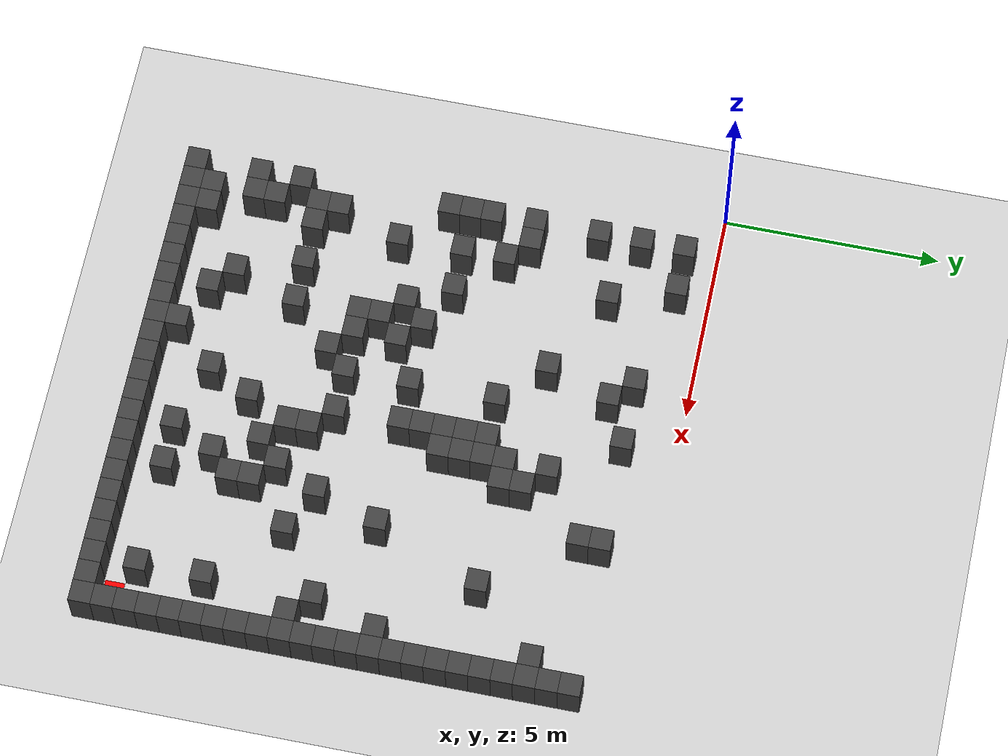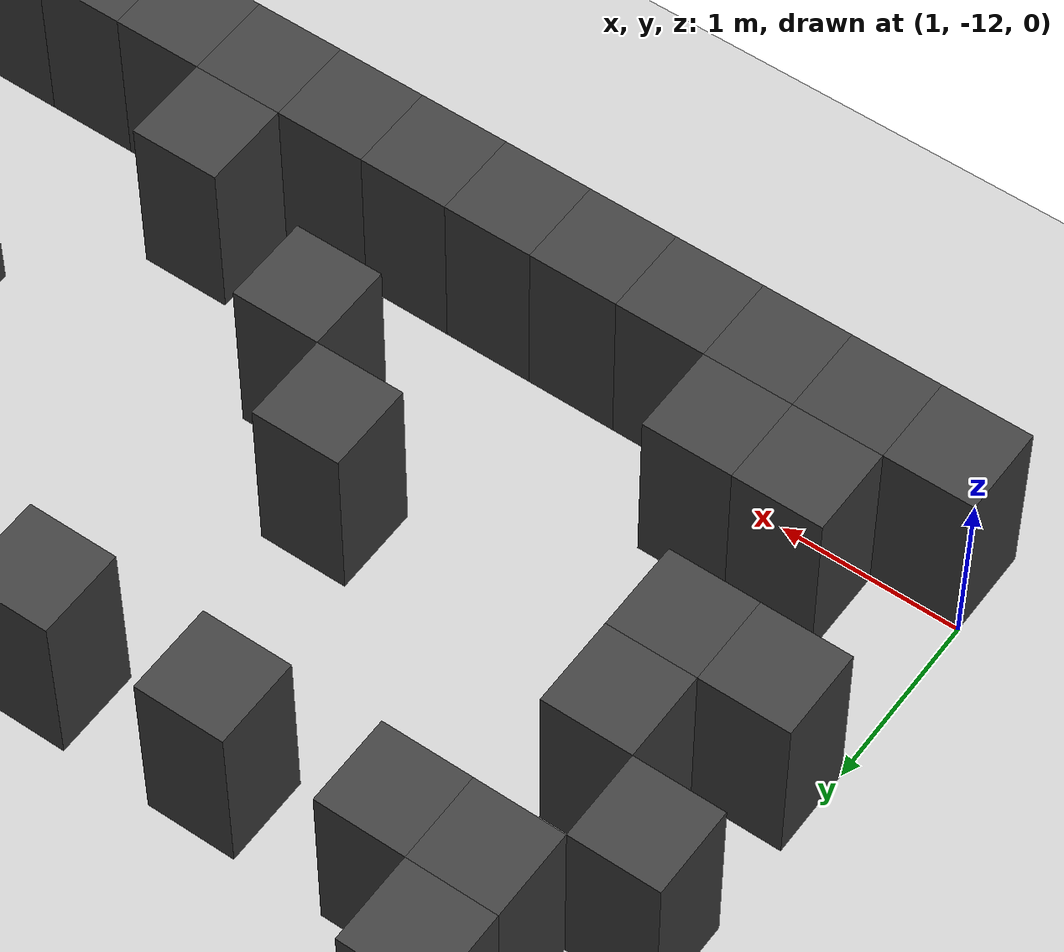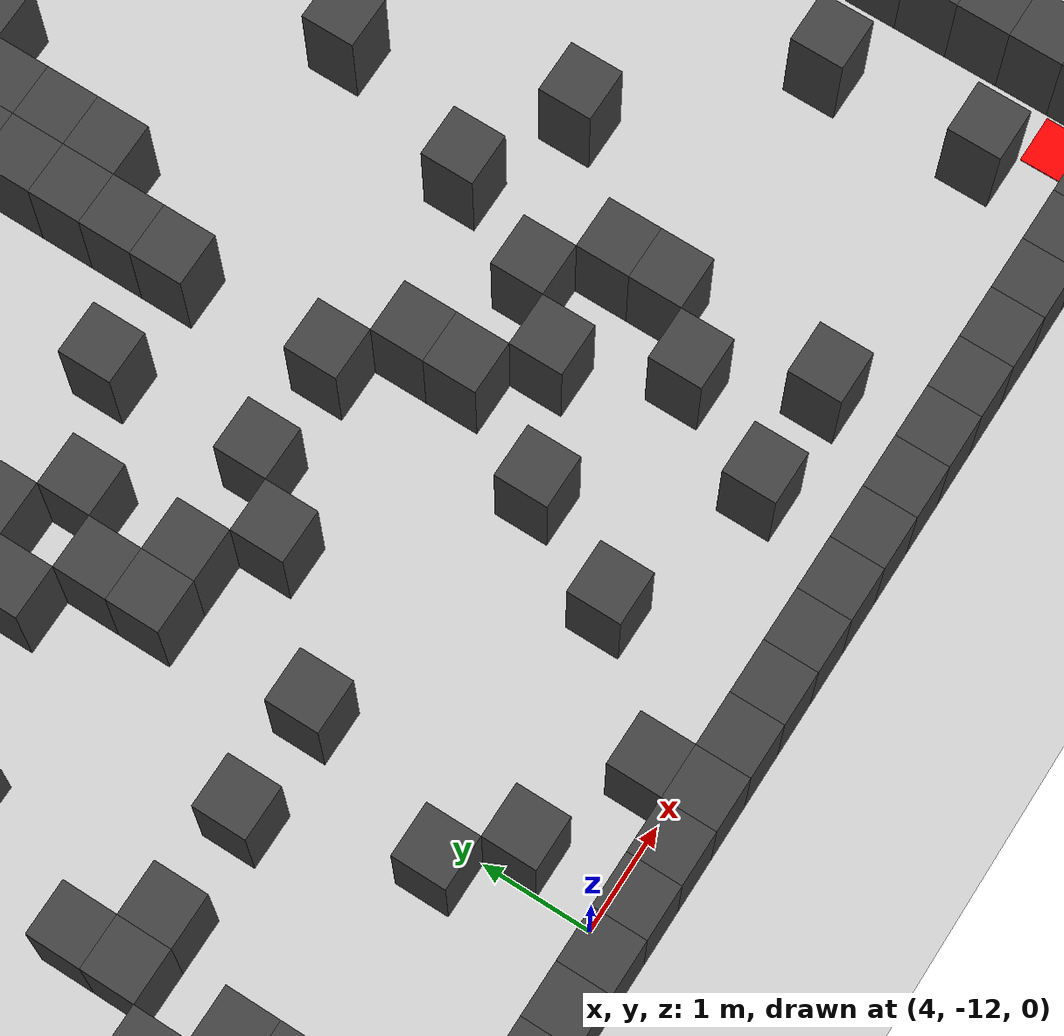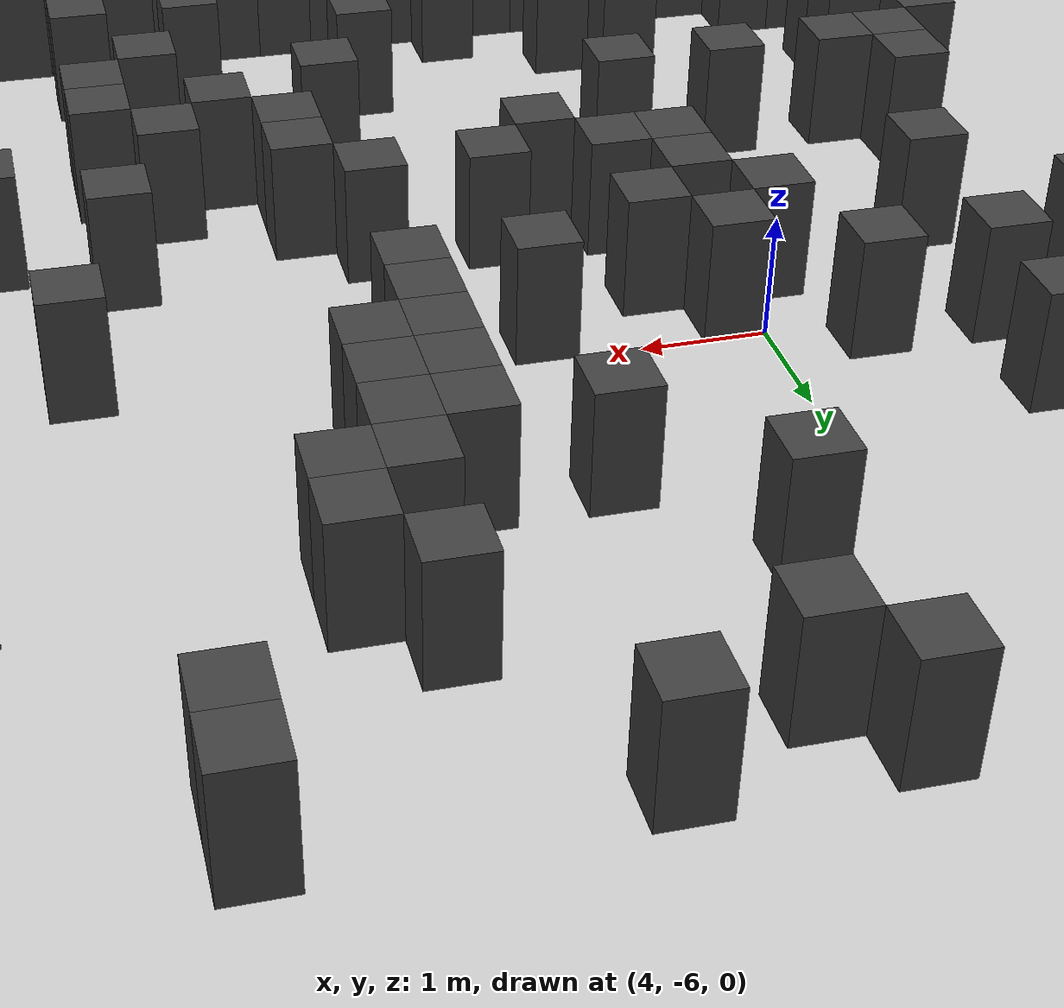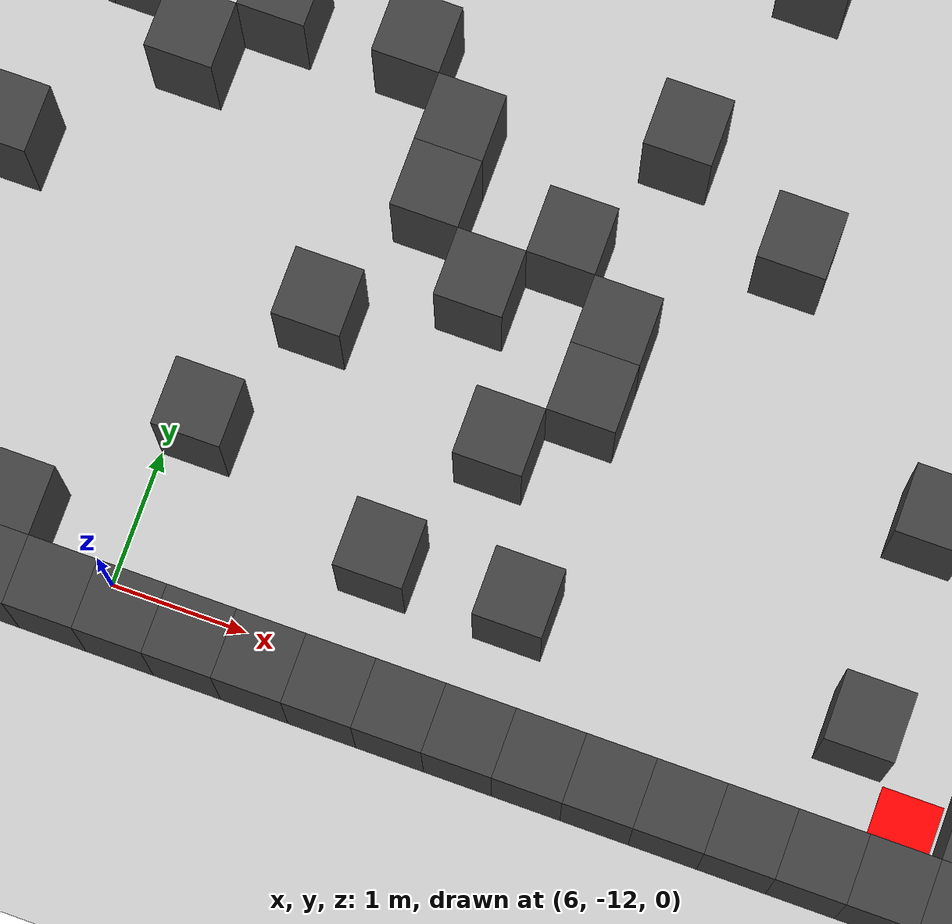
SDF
<sdf version="1.7">
 <world name="map_2522">
  <model name="ground_plane">
   <static>true</static>
   <link name="link">
    <collision name="collision">
     <geometry><plane><normal>0 0 1</normal><size>200 200</size></plane></geometry>
    </collision>
    <visual name="visual">
     <geometry><plane><normal>0 0 1</normal><size>200 200</size></plane></geometry>
     <material><ambient>0.8 0.8 0.8 1</ambient><diffuse>0.8 0.8 0.8 1</diffuse></material>
    </visual>
   </link>
  </model>
  <model name="maze_environment">
   <static>true</static>
   <link name="wall_243">
    <pose>1.250 -0.750 0.500 0 0 0</pose>
    <collision name="col"><geometry><box><size>0.5 0.5 1.0</size></box></geometry></collision>
    <visual name="vis">
     <geometry><box><size>0.5 0.5 1.0</size></box></geometry>
     <material><ambient>0.15 0.15 0.15 1</ambient><diffuse>0.25 0.25 0.25 1</diffuse></material>
    </visual>
   </link>
   <link name="wall_244">
    <pose>2.250 -0.750 0.500 0 0 0</pose>
    <collision name="col"><geometry><box><size>0.5 0.5 1.0</size></box></geometry></collision>
    <visual name="vis">
     <geometry><box><size>0.5 0.5 1.0</size></box></geometry>
     <material><ambient>0.15 0.15 0.15 1</ambient><diffuse>0.25 0.25 0.25 1</diffuse></material>
    </visual>
   </link>
   <link name="wall_252">
    <pose>4.750 -1.250 0.500 0 0 0</pose>
    <collision name="col"><geometry><box><size>0.5 0.5 1.0</size></box></geometry></collision>
    <visual name="vis">
     <geometry><box><size>0.5 0.5 1.0</size></box></geometry>
     <material><ambient>0.15 0.15 0.15 1</ambient><diffuse>0.25 0.25 0.25 1</diffuse></material>
    </visual>
   </link>
   <link name="wall_253">
    <pose>6.250 -1.250 0.500 0 0 0</pose>
    <collision name="col"><geometry><box><size>0.5 0.5 1.0</size></box></geometry></collision>
    <visual name="vis">
     <geometry><box><size>0.5 0.5 1.0</size></box></geometry>
     <material><ambient>0.15 0.15 0.15 1</ambient><diffuse>0.25 0.25 0.25 1</diffuse></material>
    </visual>
   </link>
   <link name="wall_254">
    <pose>8.750 -1.250 0.500 0 0 0</pose>
    <collision name="col"><geometry><box><size>0.5 0.5 1.0</size></box></geometry></collision>
    <visual name="vis">
     <geometry><box><size>0.5 0.5 1.0</size></box></geometry>
     <material><ambient>0.15 0.15 0.15 1</ambient><diffuse>0.25 0.25 0.25 1</diffuse></material>
    </visual>
   </link>
   <link name="wall_255">
    <pose>12.250 -1.250 0.500 0 0 0</pose>
    <collision name="col"><geometry><box><size>0.5 0.5 1.0</size></box></geometry></collision>
    <visual name="vis">
     <geometry><box><size>0.5 0.5 1.0</size></box></geometry>
     <material><ambient>0.15 0.15 0.15 1</ambient><diffuse>0.25 0.25 0.25 1</diffuse></material>
    </visual>
   </link>
   <link name="wall_262">
    <pose>1.250 -1.750 0.500 0 0 0</pose>
    <collision name="col"><geometry><box><size>0.5 0.5 1.0</size></box></geometry></collision>
    <visual name="vis">
     <geometry><box><size>0.5 0.5 1.0</size></box></geometry>
     <material><ambient>0.15 0.15 0.15 1</ambient><diffuse>0.25 0.25 0.25 1</diffuse></material>
    </visual>
   </link>
   <link name="wall_263">
    <pose>5.250 -1.750 0.500 0 0 0</pose>
    <collision name="col"><geometry><box><size>0.5 0.5 1.0</size></box></geometry></collision>
    <visual name="vis">
     <geometry><box><size>0.5 0.5 1.0</size></box></geometry>
     <material><ambient>0.15 0.15 0.15 1</ambient><diffuse>0.25 0.25 0.25 1</diffuse></material>
    </visual>
   </link>
   <link name="wall_264">
    <pose>8.750 -1.750 0.500 0 0 0</pose>
    <collision name="col"><geometry><box><size>0.5 0.5 1.0</size></box></geometry></collision>
    <visual name="vis">
     <geometry><box><size>0.5 0.5 1.0</size></box></geometry>
     <material><ambient>0.15 0.15 0.15 1</ambient><diffuse>0.25 0.25 0.25 1</diffuse></material>
    </visual>
   </link>
   <link name="wall_265">
    <pose>12.250 -1.750 0.500 0 0 0</pose>
    <collision name="col"><geometry><box><size>0.5 0.5 1.0</size></box></geometry></collision>
    <visual name="vis">
     <geometry><box><size>0.5 0.5 1.0</size></box></geometry>
     <material><ambient>0.15 0.15 0.15 1</ambient><diffuse>0.25 0.25 0.25 1</diffuse></material>
    </visual>
   </link>
   <link name="wall_270">
    <pose>2.750 -2.250 0.500 0 0 0</pose>
    <collision name="col"><geometry><box><size>0.5 0.5 1.0</size></box></geometry></collision>
    <visual name="vis">
     <geometry><box><size>0.5 0.5 1.0</size></box></geometry>
     <material><ambient>0.15 0.15 0.15 1</ambient><diffuse>0.25 0.25 0.25 1</diffuse></material>
    </visual>
   </link>
   <link name="wall_271">
    <pose>11.750 -2.250 0.500 0 0 0</pose>
    <collision name="col"><geometry><box><size>0.5 0.5 1.0</size></box></geometry></collision>
    <visual name="vis">
     <geometry><box><size>0.5 0.5 1.0</size></box></geometry>
     <material><ambient>0.15 0.15 0.15 1</ambient><diffuse>0.25 0.25 0.25 1</diffuse></material>
    </visual>
   </link>
   <link name="wall_272">
    <pose>12.250 -2.250 0.500 0 0 0</pose>
    <collision name="col"><geometry><box><size>0.5 0.5 1.0</size></box></geometry></collision>
    <visual name="vis">
     <geometry><box><size>0.5 0.5 1.0</size></box></geometry>
     <material><ambient>0.15 0.15 0.15 1</ambient><diffuse>0.25 0.25 0.25 1</diffuse></material>
    </visual>
   </link>
   <link name="wall_277">
    <pose>1.250 -2.750 0.500 0 0 0</pose>
    <collision name="col"><geometry><box><size>0.5 0.5 1.0</size></box></geometry></collision>
    <visual name="vis">
     <geometry><box><size>0.5 0.5 1.0</size></box></geometry>
     <material><ambient>0.15 0.15 0.15 1</ambient><diffuse>0.25 0.25 0.25 1</diffuse></material>
    </visual>
   </link>
   <link name="wall_278">
    <pose>7.250 -2.750 0.500 0 0 0</pose>
    <collision name="col"><geometry><box><size>0.5 0.5 1.0</size></box></geometry></collision>
    <visual name="vis">
     <geometry><box><size>0.5 0.5 1.0</size></box></geometry>
     <material><ambient>0.15 0.15 0.15 1</ambient><diffuse>0.25 0.25 0.25 1</diffuse></material>
    </visual>
   </link>
   <link name="wall_279">
    <pose>12.250 -2.750 0.500 0 0 0</pose>
    <collision name="col"><geometry><box><size>0.5 0.5 1.0</size></box></geometry></collision>
    <visual name="vis">
     <geometry><box><size>0.5 0.5 1.0</size></box></geometry>
     <material><ambient>0.15 0.15 0.15 1</ambient><diffuse>0.25 0.25 0.25 1</diffuse></material>
    </visual>
   </link>
   <link name="wall_284">
    <pose>4.750 -3.250 0.500 0 0 0</pose>
    <collision name="col"><geometry><box><size>0.5 0.5 1.0</size></box></geometry></collision>
    <visual name="vis">
     <geometry><box><size>0.5 0.5 1.0</size></box></geometry>
     <material><ambient>0.15 0.15 0.15 1</ambient><diffuse>0.25 0.25 0.25 1</diffuse></material>
    </visual>
   </link>
   <link name="wall_285">
    <pose>7.750 -3.250 0.500 0 0 0</pose>
    <collision name="col"><geometry><box><size>0.5 0.5 1.0</size></box></geometry></collision>
    <visual name="vis">
     <geometry><box><size>0.5 0.5 1.0</size></box></geometry>
     <material><ambient>0.15 0.15 0.15 1</ambient><diffuse>0.25 0.25 0.25 1</diffuse></material>
    </visual>
   </link>
   <link name="wall_286">
    <pose>12.250 -3.250 0.500 0 0 0</pose>
    <collision name="col"><geometry><box><size>0.5 0.5 1.0</size></box></geometry></collision>
    <visual name="vis">
     <geometry><box><size>0.5 0.5 1.0</size></box></geometry>
     <material><ambient>0.15 0.15 0.15 1</ambient><diffuse>0.25 0.25 0.25 1</diffuse></material>
    </visual>
   </link>
   <link name="wall_292">
    <pose>7.250 -3.750 0.500 0 0 0</pose>
    <collision name="col"><geometry><box><size>0.5 0.5 1.0</size></box></geometry></collision>
    <visual name="vis">
     <geometry><box><size>0.5 0.5 1.0</size></box></geometry>
     <material><ambient>0.15 0.15 0.15 1</ambient><diffuse>0.25 0.25 0.25 1</diffuse></material>
    </visual>
   </link>
   <link name="wall_293">
    <pose>7.750 -3.750 0.500 0 0 0</pose>
    <collision name="col"><geometry><box><size>0.5 0.5 1.0</size></box></geometry></collision>
    <visual name="vis">
     <geometry><box><size>0.5 0.5 1.0</size></box></geometry>
     <material><ambient>0.15 0.15 0.15 1</ambient><diffuse>0.25 0.25 0.25 1</diffuse></material>
    </visual>
   </link>
   <link name="wall_294">
    <pose>10.250 -3.750 0.500 0 0 0</pose>
    <collision name="col"><geometry><box><size>0.5 0.5 1.0</size></box></geometry></collision>
    <visual name="vis">
     <geometry><box><size>0.5 0.5 1.0</size></box></geometry>
     <material><ambient>0.15 0.15 0.15 1</ambient><diffuse>0.25 0.25 0.25 1</diffuse></material>
    </visual>
   </link>
   <link name="wall_295">
    <pose>12.250 -3.750 0.500 0 0 0</pose>
    <collision name="col"><geometry><box><size>0.5 0.5 1.0</size></box></geometry></collision>
    <visual name="vis">
     <geometry><box><size>0.5 0.5 1.0</size></box></geometry>
     <material><ambient>0.15 0.15 0.15 1</ambient><diffuse>0.25 0.25 0.25 1</diffuse></material>
    </visual>
   </link>
   <link name="wall_299">
    <pose>1.250 -4.250 0.500 0 0 0</pose>
    <collision name="col"><geometry><box><size>0.5 0.5 1.0</size></box></geometry></collision>
    <visual name="vis">
     <geometry><box><size>0.5 0.5 1.0</size></box></geometry>
     <material><ambient>0.15 0.15 0.15 1</ambient><diffuse>0.25 0.25 0.25 1</diffuse></material>
    </visual>
   </link>
   <link name="wall_300">
    <pose>1.750 -4.250 0.500 0 0 0</pose>
    <collision name="col"><geometry><box><size>0.5 0.5 1.0</size></box></geometry></collision>
    <visual name="vis">
     <geometry><box><size>0.5 0.5 1.0</size></box></geometry>
     <material><ambient>0.15 0.15 0.15 1</ambient><diffuse>0.25 0.25 0.25 1</diffuse></material>
    </visual>
   </link>
   <link name="wall_301">
    <pose>5.750 -4.250 0.500 0 0 0</pose>
    <collision name="col"><geometry><box><size>0.5 0.5 1.0</size></box></geometry></collision>
    <visual name="vis">
     <geometry><box><size>0.5 0.5 1.0</size></box></geometry>
     <material><ambient>0.15 0.15 0.15 1</ambient><diffuse>0.25 0.25 0.25 1</diffuse></material>
    </visual>
   </link>
   <link name="wall_302">
    <pose>6.750 -4.250 0.500 0 0 0</pose>
    <collision name="col"><geometry><box><size>0.5 0.5 1.0</size></box></geometry></collision>
    <visual name="vis">
     <geometry><box><size>0.5 0.5 1.0</size></box></geometry>
     <material><ambient>0.15 0.15 0.15 1</ambient><diffuse>0.25 0.25 0.25 1</diffuse></material>
    </visual>
   </link>
   <link name="wall_303">
    <pose>7.250 -4.250 0.500 0 0 0</pose>
    <collision name="col"><geometry><box><size>0.5 0.5 1.0</size></box></geometry></collision>
    <visual name="vis">
     <geometry><box><size>0.5 0.5 1.0</size></box></geometry>
     <material><ambient>0.15 0.15 0.15 1</ambient><diffuse>0.25 0.25 0.25 1</diffuse></material>
    </visual>
   </link>
   <link name="wall_304">
    <pose>12.250 -4.250 0.500 0 0 0</pose>
    <collision name="col"><geometry><box><size>0.5 0.5 1.0</size></box></geometry></collision>
    <visual name="vis">
     <geometry><box><size>0.5 0.5 1.0</size></box></geometry>
     <material><ambient>0.15 0.15 0.15 1</ambient><diffuse>0.25 0.25 0.25 1</diffuse></material>
    </visual>
   </link>
   <link name="wall_315">
    <pose>2.250 -4.750 0.500 0 0 0</pose>
    <collision name="col"><geometry><box><size>0.5 0.5 1.0</size></box></geometry></collision>
    <visual name="vis">
     <geometry><box><size>0.5 0.5 1.0</size></box></geometry>
     <material><ambient>0.15 0.15 0.15 1</ambient><diffuse>0.25 0.25 0.25 1</diffuse></material>
    </visual>
   </link>
   <link name="wall_316">
    <pose>6.750 -4.750 0.500 0 0 0</pose>
    <collision name="col"><geometry><box><size>0.5 0.5 1.0</size></box></geometry></collision>
    <visual name="vis">
     <geometry><box><size>0.5 0.5 1.0</size></box></geometry>
     <material><ambient>0.15 0.15 0.15 1</ambient><diffuse>0.25 0.25 0.25 1</diffuse></material>
    </visual>
   </link>
   <link name="wall_317">
    <pose>7.250 -4.750 0.500 0 0 0</pose>
    <collision name="col"><geometry><box><size>0.5 0.5 1.0</size></box></geometry></collision>
    <visual name="vis">
     <geometry><box><size>0.5 0.5 1.0</size></box></geometry>
     <material><ambient>0.15 0.15 0.15 1</ambient><diffuse>0.25 0.25 0.25 1</diffuse></material>
    </visual>
   </link>
   <link name="wall_318">
    <pose>12.250 -4.750 0.500 0 0 0</pose>
    <collision name="col"><geometry><box><size>0.5 0.5 1.0</size></box></geometry></collision>
    <visual name="vis">
     <geometry><box><size>0.5 0.5 1.0</size></box></geometry>
     <material><ambient>0.15 0.15 0.15 1</ambient><diffuse>0.25 0.25 0.25 1</diffuse></material>
    </visual>
   </link>
   <link name="wall_322">
    <pose>1.250 -5.250 0.500 0 0 0</pose>
    <collision name="col"><geometry><box><size>0.5 0.5 1.0</size></box></geometry></collision>
    <visual name="vis">
     <geometry><box><size>0.5 0.5 1.0</size></box></geometry>
     <material><ambient>0.15 0.15 0.15 1</ambient><diffuse>0.25 0.25 0.25 1</diffuse></material>
    </visual>
   </link>
   <link name="wall_323">
    <pose>6.750 -5.250 0.500 0 0 0</pose>
    <collision name="col"><geometry><box><size>0.5 0.5 1.0</size></box></geometry></collision>
    <visual name="vis">
     <geometry><box><size>0.5 0.5 1.0</size></box></geometry>
     <material><ambient>0.15 0.15 0.15 1</ambient><diffuse>0.25 0.25 0.25 1</diffuse></material>
    </visual>
   </link>
   <link name="wall_324">
    <pose>7.250 -5.250 0.500 0 0 0</pose>
    <collision name="col"><geometry><box><size>0.5 0.5 1.0</size></box></geometry></collision>
    <visual name="vis">
     <geometry><box><size>0.5 0.5 1.0</size></box></geometry>
     <material><ambient>0.15 0.15 0.15 1</ambient><diffuse>0.25 0.25 0.25 1</diffuse></material>
    </visual>
   </link>
   <link name="wall_325">
    <pose>12.250 -5.250 0.500 0 0 0</pose>
    <collision name="col"><geometry><box><size>0.5 0.5 1.0</size></box></geometry></collision>
    <visual name="vis">
     <geometry><box><size>0.5 0.5 1.0</size></box></geometry>
     <material><ambient>0.15 0.15 0.15 1</ambient><diffuse>0.25 0.25 0.25 1</diffuse></material>
    </visual>
   </link>
   <link name="wall_329">
    <pose>1.250 -5.750 0.500 0 0 0</pose>
    <collision name="col"><geometry><box><size>0.5 0.5 1.0</size></box></geometry></collision>
    <visual name="vis">
     <geometry><box><size>0.5 0.5 1.0</size></box></geometry>
     <material><ambient>0.15 0.15 0.15 1</ambient><diffuse>0.25 0.25 0.25 1</diffuse></material>
    </visual>
   </link>
   <link name="wall_330">
    <pose>2.250 -5.750 0.500 0 0 0</pose>
    <collision name="col"><geometry><box><size>0.5 0.5 1.0</size></box></geometry></collision>
    <visual name="vis">
     <geometry><box><size>0.5 0.5 1.0</size></box></geometry>
     <material><ambient>0.15 0.15 0.15 1</ambient><diffuse>0.25 0.25 0.25 1</diffuse></material>
    </visual>
   </link>
   <link name="wall_331">
    <pose>3.250 -5.750 0.500 0 0 0</pose>
    <collision name="col"><geometry><box><size>0.5 0.5 1.0</size></box></geometry></collision>
    <visual name="vis">
     <geometry><box><size>0.5 0.5 1.0</size></box></geometry>
     <material><ambient>0.15 0.15 0.15 1</ambient><diffuse>0.25 0.25 0.25 1</diffuse></material>
    </visual>
   </link>
   <link name="wall_332">
    <pose>6.750 -5.750 0.500 0 0 0</pose>
    <collision name="col"><geometry><box><size>0.5 0.5 1.0</size></box></geometry></collision>
    <visual name="vis">
     <geometry><box><size>0.5 0.5 1.0</size></box></geometry>
     <material><ambient>0.15 0.15 0.15 1</ambient><diffuse>0.25 0.25 0.25 1</diffuse></material>
    </visual>
   </link>
   <link name="wall_333">
    <pose>11.750 -5.750 0.500 0 0 0</pose>
    <collision name="col"><geometry><box><size>0.5 0.5 1.0</size></box></geometry></collision>
    <visual name="vis">
     <geometry><box><size>0.5 0.5 1.0</size></box></geometry>
     <material><ambient>0.15 0.15 0.15 1</ambient><diffuse>0.25 0.25 0.25 1</diffuse></material>
    </visual>
   </link>
   <link name="wall_334">
    <pose>12.250 -5.750 0.500 0 0 0</pose>
    <collision name="col"><geometry><box><size>0.5 0.5 1.0</size></box></geometry></collision>
    <visual name="vis">
     <geometry><box><size>0.5 0.5 1.0</size></box></geometry>
     <material><ambient>0.15 0.15 0.15 1</ambient><diffuse>0.25 0.25 0.25 1</diffuse></material>
    </visual>
   </link>
   <link name="wall_340">
    <pose>1.250 -6.250 0.500 0 0 0</pose>
    <collision name="col"><geometry><box><size>0.5 0.5 1.0</size></box></geometry></collision>
    <visual name="vis">
     <geometry><box><size>0.5 0.5 1.0</size></box></geometry>
     <material><ambient>0.15 0.15 0.15 1</ambient><diffuse>0.25 0.25 0.25 1</diffuse></material>
    </visual>
   </link>
   <link name="wall_341">
    <pose>4.250 -6.250 0.500 0 0 0</pose>
    <collision name="col"><geometry><box><size>0.5 0.5 1.0</size></box></geometry></collision>
    <visual name="vis">
     <geometry><box><size>0.5 0.5 1.0</size></box></geometry>
     <material><ambient>0.15 0.15 0.15 1</ambient><diffuse>0.25 0.25 0.25 1</diffuse></material>
    </visual>
   </link>
   <link name="wall_342">
    <pose>5.750 -6.250 0.500 0 0 0</pose>
    <collision name="col"><geometry><box><size>0.5 0.5 1.0</size></box></geometry></collision>
    <visual name="vis">
     <geometry><box><size>0.5 0.5 1.0</size></box></geometry>
     <material><ambient>0.15 0.15 0.15 1</ambient><diffuse>0.25 0.25 0.25 1</diffuse></material>
    </visual>
   </link>
   <link name="wall_343">
    <pose>6.750 -6.250 0.500 0 0 0</pose>
    <collision name="col"><geometry><box><size>0.5 0.5 1.0</size></box></geometry></collision>
    <visual name="vis">
     <geometry><box><size>0.5 0.5 1.0</size></box></geometry>
     <material><ambient>0.15 0.15 0.15 1</ambient><diffuse>0.25 0.25 0.25 1</diffuse></material>
    </visual>
   </link>
   <link name="wall_344">
    <pose>9.250 -6.250 0.500 0 0 0</pose>
    <collision name="col"><geometry><box><size>0.5 0.5 1.0</size></box></geometry></collision>
    <visual name="vis">
     <geometry><box><size>0.5 0.5 1.0</size></box></geometry>
     <material><ambient>0.15 0.15 0.15 1</ambient><diffuse>0.25 0.25 0.25 1</diffuse></material>
    </visual>
   </link>
   <link name="wall_345">
    <pose>12.250 -6.250 0.500 0 0 0</pose>
    <collision name="col"><geometry><box><size>0.5 0.5 1.0</size></box></geometry></collision>
    <visual name="vis">
     <geometry><box><size>0.5 0.5 1.0</size></box></geometry>
     <material><ambient>0.15 0.15 0.15 1</ambient><diffuse>0.25 0.25 0.25 1</diffuse></material>
    </visual>
   </link>
   <link name="wall_351">
    <pose>3.750 -6.750 0.500 0 0 0</pose>
    <collision name="col"><geometry><box><size>0.5 0.5 1.0</size></box></geometry></collision>
    <visual name="vis">
     <geometry><box><size>0.5 0.5 1.0</size></box></geometry>
     <material><ambient>0.15 0.15 0.15 1</ambient><diffuse>0.25 0.25 0.25 1</diffuse></material>
    </visual>
   </link>
   <link name="wall_352">
    <pose>4.750 -6.750 0.500 0 0 0</pose>
    <collision name="col"><geometry><box><size>0.5 0.5 1.0</size></box></geometry></collision>
    <visual name="vis">
     <geometry><box><size>0.5 0.5 1.0</size></box></geometry>
     <material><ambient>0.15 0.15 0.15 1</ambient><diffuse>0.25 0.25 0.25 1</diffuse></material>
    </visual>
   </link>
   <link name="wall_353">
    <pose>12.250 -6.750 0.500 0 0 0</pose>
    <collision name="col"><geometry><box><size>0.5 0.5 1.0</size></box></geometry></collision>
    <visual name="vis">
     <geometry><box><size>0.5 0.5 1.0</size></box></geometry>
     <material><ambient>0.15 0.15 0.15 1</ambient><diffuse>0.25 0.25 0.25 1</diffuse></material>
    </visual>
   </link>
   <link name="wall_359">
    <pose>2.250 -7.250 0.500 0 0 0</pose>
    <collision name="col"><geometry><box><size>0.5 0.5 1.0</size></box></geometry></collision>
    <visual name="vis">
     <geometry><box><size>0.5 0.5 1.0</size></box></geometry>
     <material><ambient>0.15 0.15 0.15 1</ambient><diffuse>0.25 0.25 0.25 1</diffuse></material>
    </visual>
   </link>
   <link name="wall_360">
    <pose>4.250 -7.250 0.500 0 0 0</pose>
    <collision name="col"><geometry><box><size>0.5 0.5 1.0</size></box></geometry></collision>
    <visual name="vis">
     <geometry><box><size>0.5 0.5 1.0</size></box></geometry>
     <material><ambient>0.15 0.15 0.15 1</ambient><diffuse>0.25 0.25 0.25 1</diffuse></material>
    </visual>
   </link>
   <link name="wall_361">
    <pose>11.250 -7.250 0.500 0 0 0</pose>
    <collision name="col"><geometry><box><size>0.5 0.5 1.0</size></box></geometry></collision>
    <visual name="vis">
     <geometry><box><size>0.5 0.5 1.0</size></box></geometry>
     <material><ambient>0.15 0.15 0.15 1</ambient><diffuse>0.25 0.25 0.25 1</diffuse></material>
    </visual>
   </link>
   <link name="wall_362">
    <pose>12.250 -7.250 0.500 0 0 0</pose>
    <collision name="col"><geometry><box><size>0.5 0.5 1.0</size></box></geometry></collision>
    <visual name="vis">
     <geometry><box><size>0.5 0.5 1.0</size></box></geometry>
     <material><ambient>0.15 0.15 0.15 1</ambient><diffuse>0.25 0.25 0.25 1</diffuse></material>
    </visual>
   </link>
   <link name="wall_365">
    <pose>4.250 -7.750 0.500 0 0 0</pose>
    <collision name="col"><geometry><box><size>0.5 0.5 1.0</size></box></geometry></collision>
    <visual name="vis">
     <geometry><box><size>0.5 0.5 1.0</size></box></geometry>
     <material><ambient>0.15 0.15 0.15 1</ambient><diffuse>0.25 0.25 0.25 1</diffuse></material>
    </visual>
   </link>
   <link name="wall_366">
    <pose>4.750 -7.750 0.500 0 0 0</pose>
    <collision name="col"><geometry><box><size>0.5 0.5 1.0</size></box></geometry></collision>
    <visual name="vis">
     <geometry><box><size>0.5 0.5 1.0</size></box></geometry>
     <material><ambient>0.15 0.15 0.15 1</ambient><diffuse>0.25 0.25 0.25 1</diffuse></material>
    </visual>
   </link>
   <link name="wall_367">
    <pose>5.750 -7.750 0.500 0 0 0</pose>
    <collision name="col"><geometry><box><size>0.5 0.5 1.0</size></box></geometry></collision>
    <visual name="vis">
     <geometry><box><size>0.5 0.5 1.0</size></box></geometry>
     <material><ambient>0.15 0.15 0.15 1</ambient><diffuse>0.25 0.25 0.25 1</diffuse></material>
    </visual>
   </link>
   <link name="wall_368">
    <pose>6.750 -7.750 0.500 0 0 0</pose>
    <collision name="col"><geometry><box><size>0.5 0.5 1.0</size></box></geometry></collision>
    <visual name="vis">
     <geometry><box><size>0.5 0.5 1.0</size></box></geometry>
     <material><ambient>0.15 0.15 0.15 1</ambient><diffuse>0.25 0.25 0.25 1</diffuse></material>
    </visual>
   </link>
   <link name="wall_369">
    <pose>8.750 -7.750 0.500 0 0 0</pose>
    <collision name="col"><geometry><box><size>0.5 0.5 1.0</size></box></geometry></collision>
    <visual name="vis">
     <geometry><box><size>0.5 0.5 1.0</size></box></geometry>
     <material><ambient>0.15 0.15 0.15 1</ambient><diffuse>0.25 0.25 0.25 1</diffuse></material>
    </visual>
   </link>
   <link name="wall_370">
    <pose>11.750 -7.750 0.500 0 0 0</pose>
    <collision name="col"><geometry><box><size>0.5 0.5 1.0</size></box></geometry></collision>
    <visual name="vis">
     <geometry><box><size>0.5 0.5 1.0</size></box></geometry>
     <material><ambient>0.15 0.15 0.15 1</ambient><diffuse>0.25 0.25 0.25 1</diffuse></material>
    </visual>
   </link>
   <link name="wall_371">
    <pose>12.250 -7.750 0.500 0 0 0</pose>
    <collision name="col"><geometry><box><size>0.5 0.5 1.0</size></box></geometry></collision>
    <visual name="vis">
     <geometry><box><size>0.5 0.5 1.0</size></box></geometry>
     <material><ambient>0.15 0.15 0.15 1</ambient><diffuse>0.25 0.25 0.25 1</diffuse></material>
    </visual>
   </link>
   <link name="wall_377">
    <pose>5.250 -8.250 0.500 0 0 0</pose>
    <collision name="col"><geometry><box><size>0.5 0.5 1.0</size></box></geometry></collision>
    <visual name="vis">
     <geometry><box><size>0.5 0.5 1.0</size></box></geometry>
     <material><ambient>0.15 0.15 0.15 1</ambient><diffuse>0.25 0.25 0.25 1</diffuse></material>
    </visual>
   </link>
   <link name="wall_378">
    <pose>7.250 -8.250 0.500 0 0 0</pose>
    <collision name="col"><geometry><box><size>0.5 0.5 1.0</size></box></geometry></collision>
    <visual name="vis">
     <geometry><box><size>0.5 0.5 1.0</size></box></geometry>
     <material><ambient>0.15 0.15 0.15 1</ambient><diffuse>0.25 0.25 0.25 1</diffuse></material>
    </visual>
   </link>
   <link name="wall_379">
    <pose>9.750 -8.250 0.500 0 0 0</pose>
    <collision name="col"><geometry><box><size>0.5 0.5 1.0</size></box></geometry></collision>
    <visual name="vis">
     <geometry><box><size>0.5 0.5 1.0</size></box></geometry>
     <material><ambient>0.15 0.15 0.15 1</ambient><diffuse>0.25 0.25 0.25 1</diffuse></material>
    </visual>
   </link>
   <link name="wall_380">
    <pose>12.250 -8.250 0.500 0 0 0</pose>
    <collision name="col"><geometry><box><size>0.5 0.5 1.0</size></box></geometry></collision>
    <visual name="vis">
     <geometry><box><size>0.5 0.5 1.0</size></box></geometry>
     <material><ambient>0.15 0.15 0.15 1</ambient><diffuse>0.25 0.25 0.25 1</diffuse></material>
    </visual>
   </link>
   <link name="wall_383">
    <pose>1.750 -8.750 0.500 0 0 0</pose>
    <collision name="col"><geometry><box><size>0.5 0.5 1.0</size></box></geometry></collision>
    <visual name="vis">
     <geometry><box><size>0.5 0.5 1.0</size></box></geometry>
     <material><ambient>0.15 0.15 0.15 1</ambient><diffuse>0.25 0.25 0.25 1</diffuse></material>
    </visual>
   </link>
   <link name="wall_384">
    <pose>7.250 -8.750 0.500 0 0 0</pose>
    <collision name="col"><geometry><box><size>0.5 0.5 1.0</size></box></geometry></collision>
    <visual name="vis">
     <geometry><box><size>0.5 0.5 1.0</size></box></geometry>
     <material><ambient>0.15 0.15 0.15 1</ambient><diffuse>0.25 0.25 0.25 1</diffuse></material>
    </visual>
   </link>
   <link name="wall_385">
    <pose>8.250 -8.750 0.500 0 0 0</pose>
    <collision name="col"><geometry><box><size>0.5 0.5 1.0</size></box></geometry></collision>
    <visual name="vis">
     <geometry><box><size>0.5 0.5 1.0</size></box></geometry>
     <material><ambient>0.15 0.15 0.15 1</ambient><diffuse>0.25 0.25 0.25 1</diffuse></material>
    </visual>
   </link>
   <link name="wall_386">
    <pose>12.250 -8.750 0.500 0 0 0</pose>
    <collision name="col"><geometry><box><size>0.5 0.5 1.0</size></box></geometry></collision>
    <visual name="vis">
     <geometry><box><size>0.5 0.5 1.0</size></box></geometry>
     <material><ambient>0.15 0.15 0.15 1</ambient><diffuse>0.25 0.25 0.25 1</diffuse></material>
    </visual>
   </link>
   <link name="wall_392">
    <pose>1.750 -9.250 0.500 0 0 0</pose>
    <collision name="col"><geometry><box><size>0.5 0.5 1.0</size></box></geometry></collision>
    <visual name="vis">
     <geometry><box><size>0.5 0.5 1.0</size></box></geometry>
     <material><ambient>0.15 0.15 0.15 1</ambient><diffuse>0.25 0.25 0.25 1</diffuse></material>
    </visual>
   </link>
   <link name="wall_393">
    <pose>2.250 -9.250 0.500 0 0 0</pose>
    <collision name="col"><geometry><box><size>0.5 0.5 1.0</size></box></geometry></collision>
    <visual name="vis">
     <geometry><box><size>0.5 0.5 1.0</size></box></geometry>
     <material><ambient>0.15 0.15 0.15 1</ambient><diffuse>0.25 0.25 0.25 1</diffuse></material>
    </visual>
   </link>
   <link name="wall_394">
    <pose>3.250 -9.250 0.500 0 0 0</pose>
    <collision name="col"><geometry><box><size>0.5 0.5 1.0</size></box></geometry></collision>
    <visual name="vis">
     <geometry><box><size>0.5 0.5 1.0</size></box></geometry>
     <material><ambient>0.15 0.15 0.15 1</ambient><diffuse>0.25 0.25 0.25 1</diffuse></material>
    </visual>
   </link>
   <link name="wall_395">
    <pose>4.250 -9.250 0.500 0 0 0</pose>
    <collision name="col"><geometry><box><size>0.5 0.5 1.0</size></box></geometry></collision>
    <visual name="vis">
     <geometry><box><size>0.5 0.5 1.0</size></box></geometry>
     <material><ambient>0.15 0.15 0.15 1</ambient><diffuse>0.25 0.25 0.25 1</diffuse></material>
    </visual>
   </link>
   <link name="wall_396">
    <pose>7.750 -9.250 0.500 0 0 0</pose>
    <collision name="col"><geometry><box><size>0.5 0.5 1.0</size></box></geometry></collision>
    <visual name="vis">
     <geometry><box><size>0.5 0.5 1.0</size></box></geometry>
     <material><ambient>0.15 0.15 0.15 1</ambient><diffuse>0.25 0.25 0.25 1</diffuse></material>
    </visual>
   </link>
   <link name="wall_397">
    <pose>8.750 -9.250 0.500 0 0 0</pose>
    <collision name="col"><geometry><box><size>0.5 0.5 1.0</size></box></geometry></collision>
    <visual name="vis">
     <geometry><box><size>0.5 0.5 1.0</size></box></geometry>
     <material><ambient>0.15 0.15 0.15 1</ambient><diffuse>0.25 0.25 0.25 1</diffuse></material>
    </visual>
   </link>
   <link name="wall_398">
    <pose>12.250 -9.250 0.500 0 0 0</pose>
    <collision name="col"><geometry><box><size>0.5 0.5 1.0</size></box></geometry></collision>
    <visual name="vis">
     <geometry><box><size>0.5 0.5 1.0</size></box></geometry>
     <material><ambient>0.15 0.15 0.15 1</ambient><diffuse>0.25 0.25 0.25 1</diffuse></material>
    </visual>
   </link>
   <link name="wall_406">
    <pose>1.250 -9.750 0.500 0 0 0</pose>
    <collision name="col"><geometry><box><size>0.5 0.5 1.0</size></box></geometry></collision>
    <visual name="vis">
     <geometry><box><size>0.5 0.5 1.0</size></box></geometry>
     <material><ambient>0.15 0.15 0.15 1</ambient><diffuse>0.25 0.25 0.25 1</diffuse></material>
    </visual>
   </link>
   <link name="wall_407">
    <pose>6.750 -9.750 0.500 0 0 0</pose>
    <collision name="col"><geometry><box><size>0.5 0.5 1.0</size></box></geometry></collision>
    <visual name="vis">
     <geometry><box><size>0.5 0.5 1.0</size></box></geometry>
     <material><ambient>0.15 0.15 0.15 1</ambient><diffuse>0.25 0.25 0.25 1</diffuse></material>
    </visual>
   </link>
   <link name="wall_408">
    <pose>8.750 -9.750 0.500 0 0 0</pose>
    <collision name="col"><geometry><box><size>0.5 0.5 1.0</size></box></geometry></collision>
    <visual name="vis">
     <geometry><box><size>0.5 0.5 1.0</size></box></geometry>
     <material><ambient>0.15 0.15 0.15 1</ambient><diffuse>0.25 0.25 0.25 1</diffuse></material>
    </visual>
   </link>
   <link name="wall_409">
    <pose>11.250 -9.750 0.500 0 0 0</pose>
    <collision name="col"><geometry><box><size>0.5 0.5 1.0</size></box></geometry></collision>
    <visual name="vis">
     <geometry><box><size>0.5 0.5 1.0</size></box></geometry>
     <material><ambient>0.15 0.15 0.15 1</ambient><diffuse>0.25 0.25 0.25 1</diffuse></material>
    </visual>
   </link>
   <link name="wall_410">
    <pose>12.250 -9.750 0.500 0 0 0</pose>
    <collision name="col"><geometry><box><size>0.5 0.5 1.0</size></box></geometry></collision>
    <visual name="vis">
     <geometry><box><size>0.5 0.5 1.0</size></box></geometry>
     <material><ambient>0.15 0.15 0.15 1</ambient><diffuse>0.25 0.25 0.25 1</diffuse></material>
    </visual>
   </link>
   <link name="wall_418">
    <pose>1.750 -10.250 0.500 0 0 0</pose>
    <collision name="col"><geometry><box><size>0.5 0.5 1.0</size></box></geometry></collision>
    <visual name="vis">
     <geometry><box><size>0.5 0.5 1.0</size></box></geometry>
     <material><ambient>0.15 0.15 0.15 1</ambient><diffuse>0.25 0.25 0.25 1</diffuse></material>
    </visual>
   </link>
   <link name="wall_419">
    <pose>8.250 -10.250 0.500 0 0 0</pose>
    <collision name="col"><geometry><box><size>0.5 0.5 1.0</size></box></geometry></collision>
    <visual name="vis">
     <geometry><box><size>0.5 0.5 1.0</size></box></geometry>
     <material><ambient>0.15 0.15 0.15 1</ambient><diffuse>0.25 0.25 0.25 1</diffuse></material>
    </visual>
   </link>
   <link name="wall_420">
    <pose>12.250 -10.250 0.500 0 0 0</pose>
    <collision name="col"><geometry><box><size>0.5 0.5 1.0</size></box></geometry></collision>
    <visual name="vis">
     <geometry><box><size>0.5 0.5 1.0</size></box></geometry>
     <material><ambient>0.15 0.15 0.15 1</ambient><diffuse>0.25 0.25 0.25 1</diffuse></material>
    </visual>
   </link>
   <link name="wall_424">
    <pose>1.250 -10.750 0.500 0 0 0</pose>
    <collision name="col"><geometry><box><size>0.5 0.5 1.0</size></box></geometry></collision>
    <visual name="vis">
     <geometry><box><size>0.5 0.5 1.0</size></box></geometry>
     <material><ambient>0.15 0.15 0.15 1</ambient><diffuse>0.25 0.25 0.25 1</diffuse></material>
    </visual>
   </link>
   <link name="wall_425">
    <pose>1.750 -10.750 0.500 0 0 0</pose>
    <collision name="col"><geometry><box><size>0.5 0.5 1.0</size></box></geometry></collision>
    <visual name="vis">
     <geometry><box><size>0.5 0.5 1.0</size></box></geometry>
     <material><ambient>0.15 0.15 0.15 1</ambient><diffuse>0.25 0.25 0.25 1</diffuse></material>
    </visual>
   </link>
   <link name="wall_426">
    <pose>3.750 -10.750 0.500 0 0 0</pose>
    <collision name="col"><geometry><box><size>0.5 0.5 1.0</size></box></geometry></collision>
    <visual name="vis">
     <geometry><box><size>0.5 0.5 1.0</size></box></geometry>
     <material><ambient>0.15 0.15 0.15 1</ambient><diffuse>0.25 0.25 0.25 1</diffuse></material>
    </visual>
   </link>
   <link name="wall_427">
    <pose>6.250 -10.750 0.500 0 0 0</pose>
    <collision name="col"><geometry><box><size>0.5 0.5 1.0</size></box></geometry></collision>
    <visual name="vis">
     <geometry><box><size>0.5 0.5 1.0</size></box></geometry>
     <material><ambient>0.15 0.15 0.15 1</ambient><diffuse>0.25 0.25 0.25 1</diffuse></material>
    </visual>
   </link>
   <link name="wall_428">
    <pose>12.250 -10.750 0.500 0 0 0</pose>
    <collision name="col"><geometry><box><size>0.5 0.5 1.0</size></box></geometry></collision>
    <visual name="vis">
     <geometry><box><size>0.5 0.5 1.0</size></box></geometry>
     <material><ambient>0.15 0.15 0.15 1</ambient><diffuse>0.25 0.25 0.25 1</diffuse></material>
    </visual>
   </link>
   <link name="wall_432">
    <pose>4.250 -11.250 0.500 0 0 0</pose>
    <collision name="col"><geometry><box><size>0.5 0.5 1.0</size></box></geometry></collision>
    <visual name="vis">
     <geometry><box><size>0.5 0.5 1.0</size></box></geometry>
     <material><ambient>0.15 0.15 0.15 1</ambient><diffuse>0.25 0.25 0.25 1</diffuse></material>
    </visual>
   </link>
   <link name="wall_433">
    <pose>7.750 -11.250 0.500 0 0 0</pose>
    <collision name="col"><geometry><box><size>0.5 0.5 1.0</size></box></geometry></collision>
    <visual name="vis">
     <geometry><box><size>0.5 0.5 1.0</size></box></geometry>
     <material><ambient>0.15 0.15 0.15 1</ambient><diffuse>0.25 0.25 0.25 1</diffuse></material>
    </visual>
   </link>
   <link name="wall_434">
    <pose>8.750 -11.250 0.500 0 0 0</pose>
    <collision name="col"><geometry><box><size>0.5 0.5 1.0</size></box></geometry></collision>
    <visual name="vis">
     <geometry><box><size>0.5 0.5 1.0</size></box></geometry>
     <material><ambient>0.15 0.15 0.15 1</ambient><diffuse>0.25 0.25 0.25 1</diffuse></material>
    </visual>
   </link>
   <link name="wall_435">
    <pose>11.250 -11.250 0.500 0 0 0</pose>
    <collision name="col"><geometry><box><size>0.5 0.5 1.0</size></box></geometry></collision>
    <visual name="vis">
     <geometry><box><size>0.5 0.5 1.0</size></box></geometry>
     <material><ambient>0.15 0.15 0.15 1</ambient><diffuse>0.25 0.25 0.25 1</diffuse></material>
    </visual>
   </link>
   <link name="wall_436">
    <pose>12.250 -11.250 0.500 0 0 0</pose>
    <collision name="col"><geometry><box><size>0.5 0.5 1.0</size></box></geometry></collision>
    <visual name="vis">
     <geometry><box><size>0.5 0.5 1.0</size></box></geometry>
     <material><ambient>0.15 0.15 0.15 1</ambient><diffuse>0.25 0.25 0.25 1</diffuse></material>
    </visual>
   </link>
   <link name="wall_442">
    <pose>1.750 -11.750 0.500 0 0 0</pose>
    <collision name="col"><geometry><box><size>0.5 0.5 1.0</size></box></geometry></collision>
    <visual name="vis">
     <geometry><box><size>0.5 0.5 1.0</size></box></geometry>
     <material><ambient>0.15 0.15 0.15 1</ambient><diffuse>0.25 0.25 0.25 1</diffuse></material>
    </visual>
   </link>
   <link name="wall_443">
    <pose>2.250 -11.750 0.500 0 0 0</pose>
    <collision name="col"><geometry><box><size>0.5 0.5 1.0</size></box></geometry></collision>
    <visual name="vis">
     <geometry><box><size>0.5 0.5 1.0</size></box></geometry>
     <material><ambient>0.15 0.15 0.15 1</ambient><diffuse>0.25 0.25 0.25 1</diffuse></material>
    </visual>
   </link>
   <link name="wall_444">
    <pose>5.250 -11.750 0.500 0 0 0</pose>
    <collision name="col"><geometry><box><size>0.5 0.5 1.0</size></box></geometry></collision>
    <visual name="vis">
     <geometry><box><size>0.5 0.5 1.0</size></box></geometry>
     <material><ambient>0.15 0.15 0.15 1</ambient><diffuse>0.25 0.25 0.25 1</diffuse></material>
    </visual>
   </link>
   <link name="wall_445">
    <pose>12.250 -11.750 0.500 0 0 0</pose>
    <collision name="col"><geometry><box><size>0.5 0.5 1.0</size></box></geometry></collision>
    <visual name="vis">
     <geometry><box><size>0.5 0.5 1.0</size></box></geometry>
     <material><ambient>0.15 0.15 0.15 1</ambient><diffuse>0.25 0.25 0.25 1</diffuse></material>
    </visual>
   </link>
   <link name="wall_473">
    <pose>1.250 -12.250 0.500 0 0 0</pose>
    <collision name="col"><geometry><box><size>0.5 0.5 1.0</size></box></geometry></collision>
    <visual name="vis">
     <geometry><box><size>0.5 0.5 1.0</size></box></geometry>
     <material><ambient>0.15 0.15 0.15 1</ambient><diffuse>0.25 0.25 0.25 1</diffuse></material>
    </visual>
   </link>
   <link name="wall_474">
    <pose>1.750 -12.250 0.500 0 0 0</pose>
    <collision name="col"><geometry><box><size>0.5 0.5 1.0</size></box></geometry></collision>
    <visual name="vis">
     <geometry><box><size>0.5 0.5 1.0</size></box></geometry>
     <material><ambient>0.15 0.15 0.15 1</ambient><diffuse>0.25 0.25 0.25 1</diffuse></material>
    </visual>
   </link>
   <link name="wall_475">
    <pose>2.250 -12.250 0.500 0 0 0</pose>
    <collision name="col"><geometry><box><size>0.5 0.5 1.0</size></box></geometry></collision>
    <visual name="vis">
     <geometry><box><size>0.5 0.5 1.0</size></box></geometry>
     <material><ambient>0.15 0.15 0.15 1</ambient><diffuse>0.25 0.25 0.25 1</diffuse></material>
    </visual>
   </link>
   <link name="wall_476">
    <pose>2.750 -12.250 0.500 0 0 0</pose>
    <collision name="col"><geometry><box><size>0.5 0.5 1.0</size></box></geometry></collision>
    <visual name="vis">
     <geometry><box><size>0.5 0.5 1.0</size></box></geometry>
     <material><ambient>0.15 0.15 0.15 1</ambient><diffuse>0.25 0.25 0.25 1</diffuse></material>
    </visual>
   </link>
   <link name="wall_477">
    <pose>3.250 -12.250 0.500 0 0 0</pose>
    <collision name="col"><geometry><box><size>0.5 0.5 1.0</size></box></geometry></collision>
    <visual name="vis">
     <geometry><box><size>0.5 0.5 1.0</size></box></geometry>
     <material><ambient>0.15 0.15 0.15 1</ambient><diffuse>0.25 0.25 0.25 1</diffuse></material>
    </visual>
   </link>
   <link name="wall_478">
    <pose>3.750 -12.250 0.500 0 0 0</pose>
    <collision name="col"><geometry><box><size>0.5 0.5 1.0</size></box></geometry></collision>
    <visual name="vis">
     <geometry><box><size>0.5 0.5 1.0</size></box></geometry>
     <material><ambient>0.15 0.15 0.15 1</ambient><diffuse>0.25 0.25 0.25 1</diffuse></material>
    </visual>
   </link>
   <link name="wall_479">
    <pose>4.250 -12.250 0.500 0 0 0</pose>
    <collision name="col"><geometry><box><size>0.5 0.5 1.0</size></box></geometry></collision>
    <visual name="vis">
     <geometry><box><size>0.5 0.5 1.0</size></box></geometry>
     <material><ambient>0.15 0.15 0.15 1</ambient><diffuse>0.25 0.25 0.25 1</diffuse></material>
    </visual>
   </link>
   <link name="wall_480">
    <pose>4.750 -12.250 0.500 0 0 0</pose>
    <collision name="col"><geometry><box><size>0.5 0.5 1.0</size></box></geometry></collision>
    <visual name="vis">
     <geometry><box><size>0.5 0.5 1.0</size></box></geometry>
     <material><ambient>0.15 0.15 0.15 1</ambient><diffuse>0.25 0.25 0.25 1</diffuse></material>
    </visual>
   </link>
   <link name="wall_481">
    <pose>5.250 -12.250 0.500 0 0 0</pose>
    <collision name="col"><geometry><box><size>0.5 0.5 1.0</size></box></geometry></collision>
    <visual name="vis">
     <geometry><box><size>0.5 0.5 1.0</size></box></geometry>
     <material><ambient>0.15 0.15 0.15 1</ambient><diffuse>0.25 0.25 0.25 1</diffuse></material>
    </visual>
   </link>
   <link name="wall_482">
    <pose>5.750 -12.250 0.500 0 0 0</pose>
    <collision name="col"><geometry><box><size>0.5 0.5 1.0</size></box></geometry></collision>
    <visual name="vis">
     <geometry><box><size>0.5 0.5 1.0</size></box></geometry>
     <material><ambient>0.15 0.15 0.15 1</ambient><diffuse>0.25 0.25 0.25 1</diffuse></material>
    </visual>
   </link>
   <link name="wall_483">
    <pose>6.250 -12.250 0.500 0 0 0</pose>
    <collision name="col"><geometry><box><size>0.5 0.5 1.0</size></box></geometry></collision>
    <visual name="vis">
     <geometry><box><size>0.5 0.5 1.0</size></box></geometry>
     <material><ambient>0.15 0.15 0.15 1</ambient><diffuse>0.25 0.25 0.25 1</diffuse></material>
    </visual>
   </link>
   <link name="wall_484">
    <pose>6.750 -12.250 0.500 0 0 0</pose>
    <collision name="col"><geometry><box><size>0.5 0.5 1.0</size></box></geometry></collision>
    <visual name="vis">
     <geometry><box><size>0.5 0.5 1.0</size></box></geometry>
     <material><ambient>0.15 0.15 0.15 1</ambient><diffuse>0.25 0.25 0.25 1</diffuse></material>
    </visual>
   </link>
   <link name="wall_485">
    <pose>7.250 -12.250 0.500 0 0 0</pose>
    <collision name="col"><geometry><box><size>0.5 0.5 1.0</size></box></geometry></collision>
    <visual name="vis">
     <geometry><box><size>0.5 0.5 1.0</size></box></geometry>
     <material><ambient>0.15 0.15 0.15 1</ambient><diffuse>0.25 0.25 0.25 1</diffuse></material>
    </visual>
   </link>
   <link name="wall_486">
    <pose>7.750 -12.250 0.500 0 0 0</pose>
    <collision name="col"><geometry><box><size>0.5 0.5 1.0</size></box></geometry></collision>
    <visual name="vis">
     <geometry><box><size>0.5 0.5 1.0</size></box></geometry>
     <material><ambient>0.15 0.15 0.15 1</ambient><diffuse>0.25 0.25 0.25 1</diffuse></material>
    </visual>
   </link>
   <link name="wall_487">
    <pose>8.250 -12.250 0.500 0 0 0</pose>
    <collision name="col"><geometry><box><size>0.5 0.5 1.0</size></box></geometry></collision>
    <visual name="vis">
     <geometry><box><size>0.5 0.5 1.0</size></box></geometry>
     <material><ambient>0.15 0.15 0.15 1</ambient><diffuse>0.25 0.25 0.25 1</diffuse></material>
    </visual>
   </link>
   <link name="wall_488">
    <pose>8.750 -12.250 0.500 0 0 0</pose>
    <collision name="col"><geometry><box><size>0.5 0.5 1.0</size></box></geometry></collision>
    <visual name="vis">
     <geometry><box><size>0.5 0.5 1.0</size></box></geometry>
     <material><ambient>0.15 0.15 0.15 1</ambient><diffuse>0.25 0.25 0.25 1</diffuse></material>
    </visual>
   </link>
   <link name="wall_489">
    <pose>9.250 -12.250 0.500 0 0 0</pose>
    <collision name="col"><geometry><box><size>0.5 0.5 1.0</size></box></geometry></collision>
    <visual name="vis">
     <geometry><box><size>0.5 0.5 1.0</size></box></geometry>
     <material><ambient>0.15 0.15 0.15 1</ambient><diffuse>0.25 0.25 0.25 1</diffuse></material>
    </visual>
   </link>
   <link name="wall_490">
    <pose>9.750 -12.250 0.500 0 0 0</pose>
    <collision name="col"><geometry><box><size>0.5 0.5 1.0</size></box></geometry></collision>
    <visual name="vis">
     <geometry><box><size>0.5 0.5 1.0</size></box></geometry>
     <material><ambient>0.15 0.15 0.15 1</ambient><diffuse>0.25 0.25 0.25 1</diffuse></material>
    </visual>
   </link>
   <link name="wall_491">
    <pose>10.250 -12.250 0.500 0 0 0</pose>
    <collision name="col"><geometry><box><size>0.5 0.5 1.0</size></box></geometry></collision>
    <visual name="vis">
     <geometry><box><size>0.5 0.5 1.0</size></box></geometry>
     <material><ambient>0.15 0.15 0.15 1</ambient><diffuse>0.25 0.25 0.25 1</diffuse></material>
    </visual>
   </link>
   <link name="wall_492">
    <pose>10.750 -12.250 0.500 0 0 0</pose>
    <collision name="col"><geometry><box><size>0.5 0.5 1.0</size></box></geometry></collision>
    <visual name="vis">
     <geometry><box><size>0.5 0.5 1.0</size></box></geometry>
     <material><ambient>0.15 0.15 0.15 1</ambient><diffuse>0.25 0.25 0.25 1</diffuse></material>
    </visual>
   </link>
   <link name="wall_493">
    <pose>11.250 -12.250 0.500 0 0 0</pose>
    <collision name="col"><geometry><box><size>0.5 0.5 1.0</size></box></geometry></collision>
    <visual name="vis">
     <geometry><box><size>0.5 0.5 1.0</size></box></geometry>
     <material><ambient>0.15 0.15 0.15 1</ambient><diffuse>0.25 0.25 0.25 1</diffuse></material>
    </visual>
   </link>
   <link name="wall_494">
    <pose>11.750 -12.250 0.500 0 0 0</pose>
    <collision name="col"><geometry><box><size>0.5 0.5 1.0</size></box></geometry></collision>
    <visual name="vis">
     <geometry><box><size>0.5 0.5 1.0</size></box></geometry>
     <material><ambient>0.15 0.15 0.15 1</ambient><diffuse>0.25 0.25 0.25 1</diffuse></material>
    </visual>
   </link>
   <link name="wall_495">
    <pose>12.250 -12.250 0.500 0 0 0</pose>
    <collision name="col"><geometry><box><size>0.5 0.5 1.0</size></box></geometry></collision>
    <visual name="vis">
     <geometry><box><size>0.5 0.5 1.0</size></box></geometry>
     <material><ambient>0.15 0.15 0.15 1</ambient><diffuse>0.25 0.25 0.25 1</diffuse></material>
    </visual>
   </link>
   <link name="goal_zone">
    <pose>11.750 -11.750 0.005 0 0 0</pose>
    <visual name="vis">
     <geometry><box><size>0.45 0.45 0.01</size></box></geometry>
     <material>
      <ambient>1.0 0.0 0.0 1</ambient>
      <diffuse>1.0 0.0 0.0 1</diffuse>
      <emissive>0.60 0.00 0.00 1</emissive>
     </material>
    </visual>
   </link>
  </model>
 </world>
</sdf>
